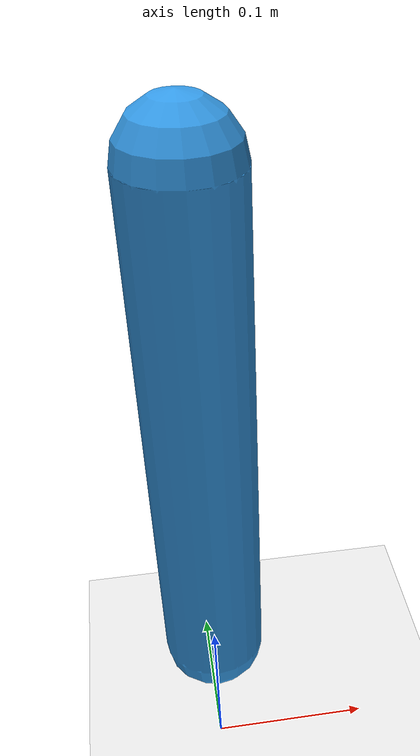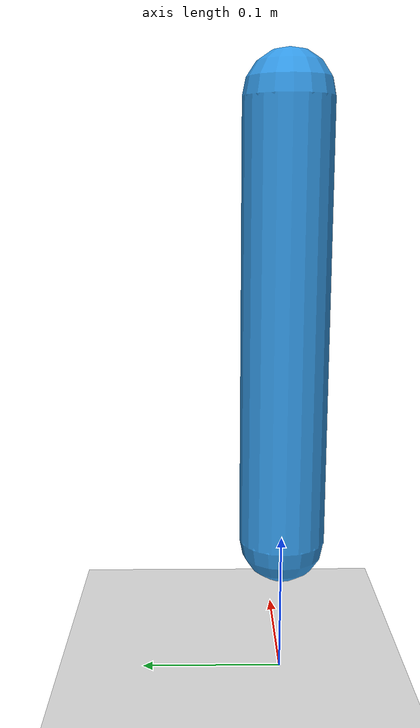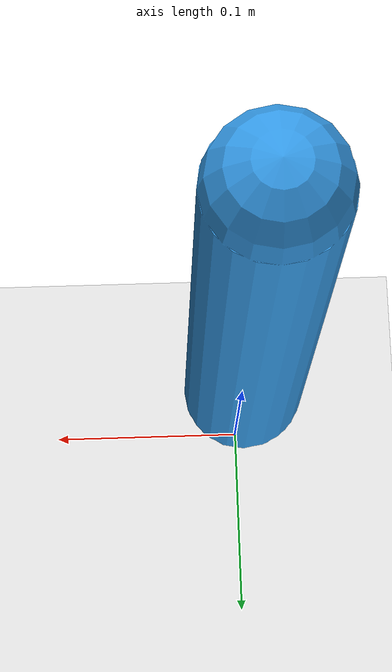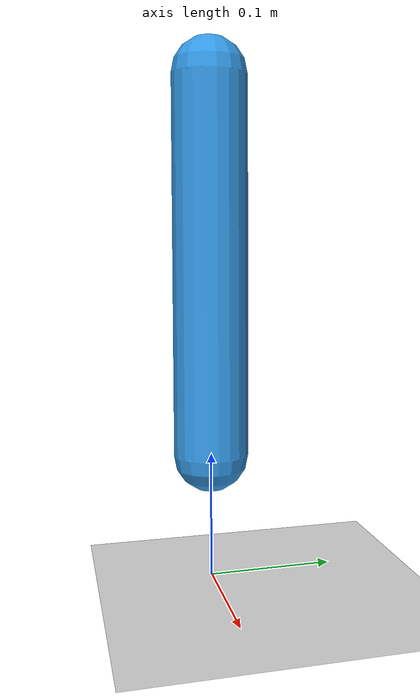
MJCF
<mujoco model="stage1_single_hinge">
    <!--  GLOBAL OPTIONS       -->
    <option timestep="0.002" gravity="0 0 -9.81" integrator="RK4"/>

    <!--  VISUAL SETTINGS      -->
    <visual>
        <global offwidth="800" offheight="600"/>
    </visual>

    <!--  DEFAULT PARAMETERS   -->
    <default>
        <joint damping="0.1" limited="true"/>
        <geom friction="1 0.1 0.1" density="1000"/>
        <motor ctrllimited="true" ctrlrange="-1 1"/>
    </default>

    <!--  WORLD DEFINITION     -->
    <worldbody>

        <!-- Ground plane (visual reference only) -->
        <geom type="plane" size="5 5 0.1" rgba="0.9 0.9 0.9 1"/>

        <!-- Base body (fixed) -->
        <body name="base" pos="0 0 0.1">

            <!-- Link body -->
            <body name="link1" pos="0 0 0">

                <!-- HINGE JOINT -->
                <joint
                    name="hinge1"
                    type="hinge"
                    axis="0 1 0"
                    pos="0 0 0"
                    range="-90 90"/>

                <!-- Visual + collision geometry -->
                <geom
                    name="link1_geom"
                    type="capsule"
                    fromto="0 0 0  0 0 0.3"
                    size="0.03"
                    rgba="0.2 0.6 0.9 1"/>

            </body>
        </body>
    </worldbody>

    <!--  ACTUATORS            -->
    <actuator>
        <motor
            name="hinge_motor"
            joint="hinge1"
            gear="1"/>
    </actuator>

</mujoco>
